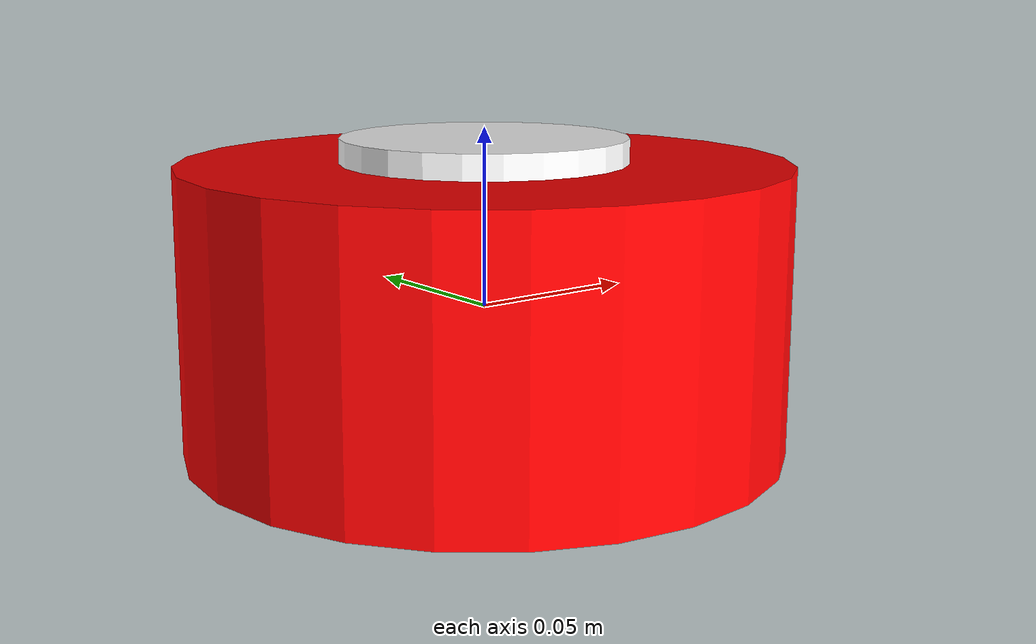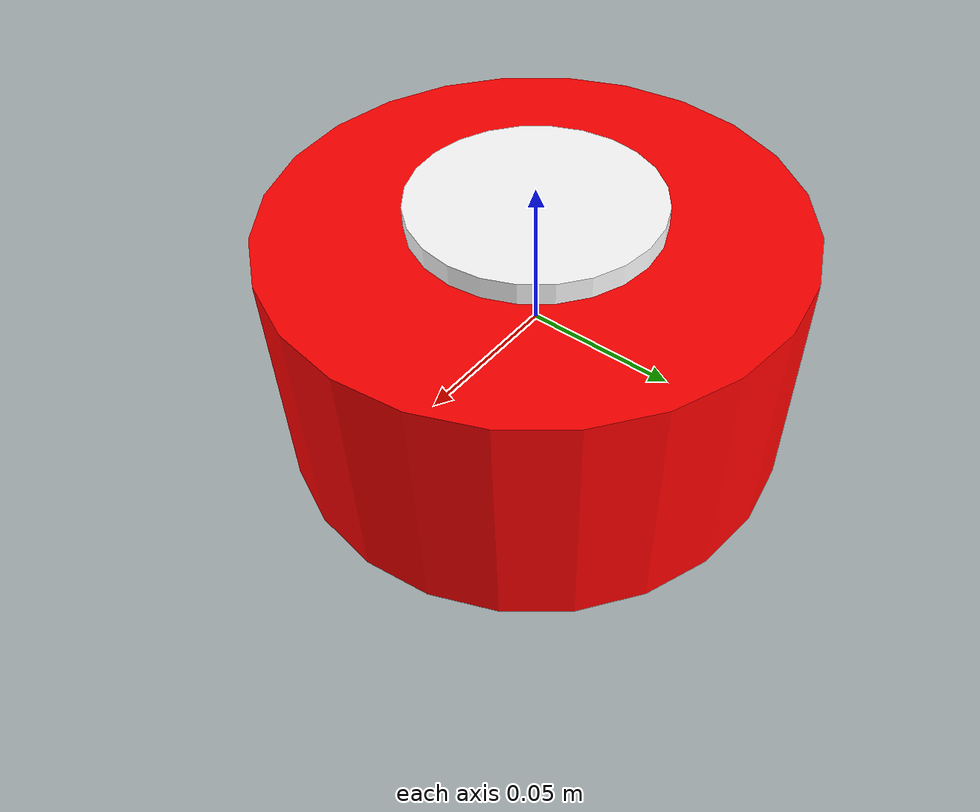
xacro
<?xml version="1.0"?>
<!-- KEYA Automatic Steering Motor -->

<robot xmlns:xacro="http://www.ros.org/wiki/xacro" name="keya_world">

  <!-- Import Keya URDF -->
  <xacro:include filename="$(find ros2_keya_driver)/description/ros2_control/keya.urdf.xacro" />

  <!-- Import Keya ros2_control description -->
  <xacro:include filename="$(find ros2_keya_driver)/description/ros2_control/keya.ros2_control.xacro" />

  <xacro:arg name="prefix" default="motor" />
  <xacro:arg name="parent" default="world" />

  <!-- Used for fixing robot -->
  <link name="$(arg parent)" />

  <xacro:keya parent="$(arg parent)" prefix="$(arg prefix)" />

  <xacro:keya_ros2_control
    name="keya" prefix="$(arg prefix)" />

</robot>

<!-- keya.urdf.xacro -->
<robot xmlns:xacro="http://www.ros.org/wiki/xacro">

    <xacro:property name="rotate" value="3.14" />
    <xacro:property name="base_radius" value="0.085" />
    <xacro:property name="base_height" value="0.081" />
    <xacro:property name="wheel_radius" value="0.04" />
    <xacro:property name="wheel_height" value="0.095" />

    <xacro:macro name="keya" params="parent prefix">

        <link name="${prefix}_base_link">
            <visual>
                <geometry>
                    <cylinder length="${base_height}" radius="${base_radius}" />
                </geometry>
                <origin xyz="0 0 0" rpy="0 0 0" />
                <material name="red">
                    <color rgba="1 0 0 1" />
                </material>
            </visual>
        </link>

        <joint name="${parent}_${prefix}_base" type="fixed">
            <parent link="${parent}" />
            <child link="${prefix}_base_link" />
            <origin xyz="0 0 0" rpy="0 0 0" />
        </joint>

        <link name="${prefix}_wheel">
            <visual>
                <geometry>
                    <cylinder length="${wheel_height}" radius="${wheel_radius}" />
                </geometry>
                <origin xyz="0 0 0" rpy="0 0 0" />
                <material name="white">
                    <color rgba="1 1 1 1" />
                </material>
            </visual>
        </link>

        <!-- Revolute joint -->
        <joint name="${prefix}_joint" type="revolute">
            <parent link="${prefix}_base_link" />
            <child link="${prefix}_wheel" />
            <origin xyz="0 0 0" rpy="0 0 0" />
            <axis xyz="0 0 1" />
            <limit lower="0" upper="3.14" velocity="0.5" effort="1.0" />
        </joint>

    </xacro:macro>

</robot>
